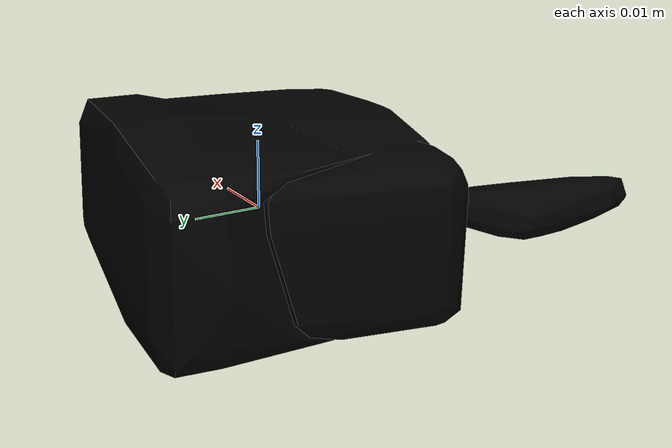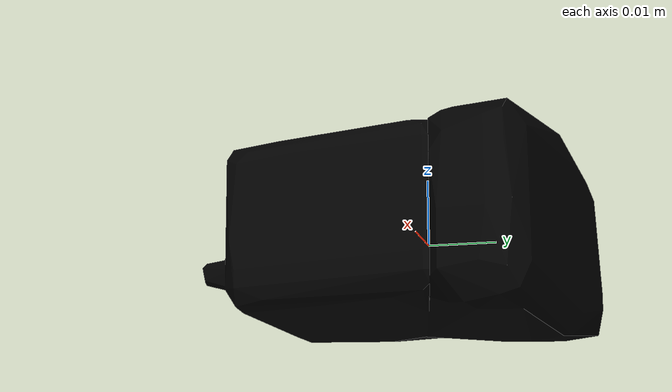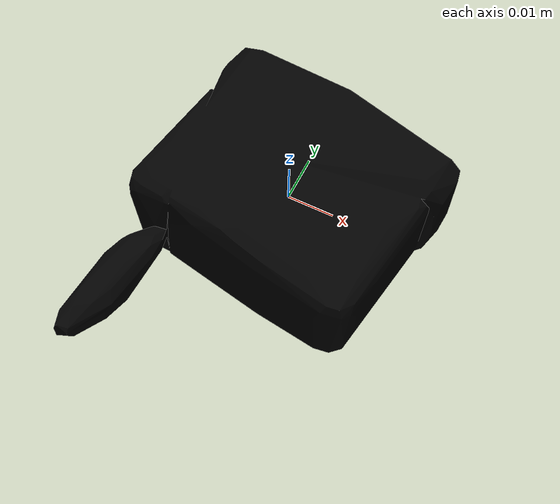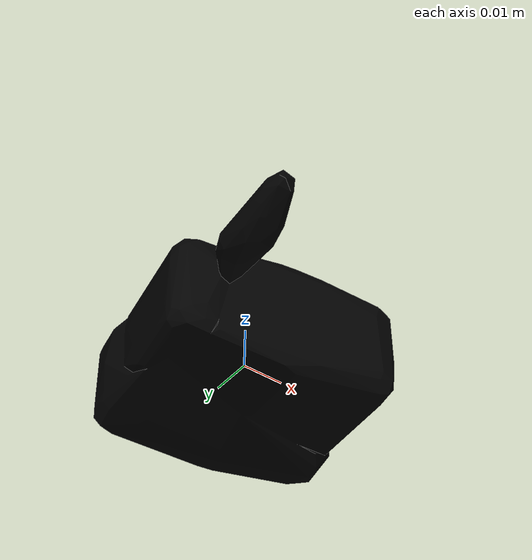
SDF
<?xml version="1.0"?>
<sdf version="1.4">
  <model name="038_padlock_textured">
    <pose>0 0 0  0 0 0</pose>
    <link name="body">
      <inertial>
        <mass> 1.0 </mass>
        <pose>0 0 0 0 0 0</pose>
        <inertia>
          <ixx>0.00018401152536710535</ixx>
          <ixy>0.0</ixy>
          <ixz>0.0</ixz>
          <iyy>0.0002500168962286254</iyy>
          <iyz>0.0</iyz>
          <izz>0.00033882364627426916</izz>
        </inertia>
      </inertial>
      <visual name="visual">
        <geometry>
          <mesh>
            <uri>model://038_padlock_textured/textured.dae</uri>
          </mesh>
        </geometry>
        <pose>0.017119086053070456 -0.006268841876731499 -0.01534564682918925 -0.0015151851637079734 0.1062230888799223 0.19955619657825363</pose>
      </visual>
      <collision name="collision">
        <geometry>
          <mesh>
            <uri>model://038_padlock_textured/textured.col.dae</uri>
          </mesh>
        </geometry>
        <max_contacts>10</max_contacts>
        <surface>
          <friction>
            <ode>
              <mu>0.8</mu>
              <mu2>0.8</mu2>
              <slip1>0</slip1>
              <slip2>0</slip2>
            </ode>
            <torsional>
              <ode/>
            </torsional>
          </friction>
          <contact>
            <ode>
              <kp>1000000.0</kp>
              <kd>1.0</kd>
              <max_vel>0.0</max_vel>
            </ode>
          </contact>
        </surface>
        <pose>0.017119086053070456 -0.006268841876731499 -0.01534564682918925 -0.0015151851637079734 0.1062230888799223 0.19955619657825363</pose>
      </collision>
    </link>
  </model>
</sdf>
